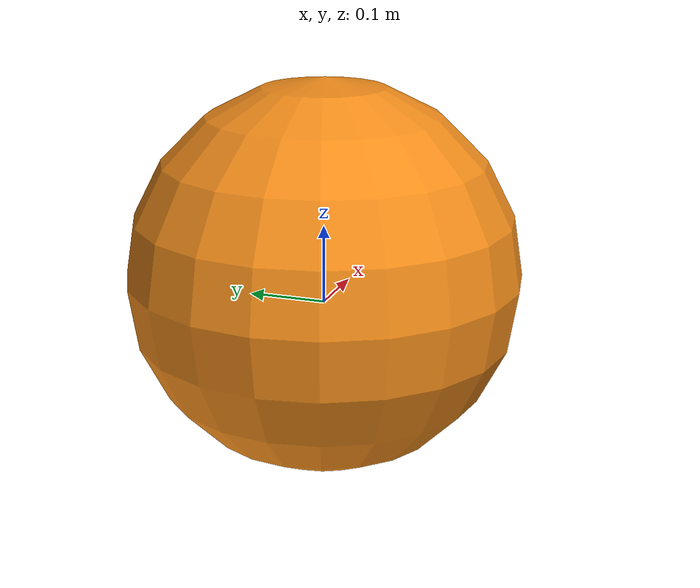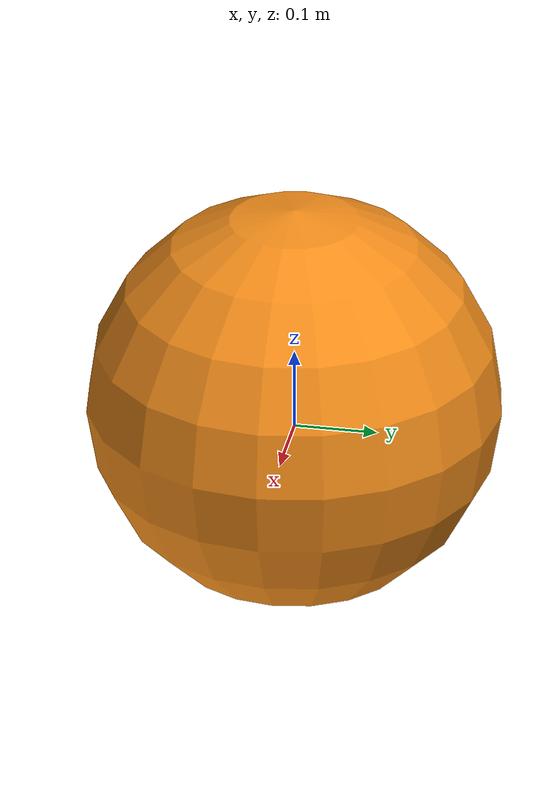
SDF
<?xml version="1.0" ?>

<sdf version="1.5">
  <model name="cricket_ball">
    <link name="link">
      <pose>0 0 0.0375 0 0 0</pose>
      <inertial>
        <mass>0.1467</mass>
        <inertia>
          <ixx>8.251875e-05</ixx>
          <ixy>0</ixy>
          <ixz>0</ixz>
          <iyy>8.251875e-05</iyy>
          <iyz>0</iyz>
          <izz>8.251875e-05</izz>
        </inertia>
      </inertial>

      <collision name="collision">
        <geometry>
          <sphere>
            <radius>0.25</radius>
          </sphere>
        </geometry>
        <surface>
          <contact>
            <!-- Red Pine coefficients for longitudinal axis of the wood
                 according to:
                 http://www.fpl.fs.fed.us/documnts/fplgtr/fplgtr113/ch04.pdf -->
            <poissons_ratio>0.347</poissons_ratio>
            <elastic_modulus>8.8e+09</elastic_modulus>
            <ode>
              <kp>100000</kp>
              <kd>100</kd>
              <max_vel>100.0</max_vel>
              <min_depth>0.001</min_depth>
            </ode>
          </contact>
          <friction>
            <torsional>
              <coefficient>1.0</coefficient>
              <use_patch_radius>0</use_patch_radius>
              <surface_radius>0.01</surface_radius>
            </torsional>
          </friction>
        </surface>
      </collision>

      <visual name="visual">
        <geometry>
          <sphere>
            <radius>0.25</radius>
          </sphere>
        </geometry>
        <material>
          <script>
            <uri>file://media/materials/scripts/gazebo.material</uri>
            <name>Gazebo/Orange</name>
          </script>
        </material>
      </visual>

      <!-- approximate rolling friction -->
      <velocity_decay>
        <linear>0.90</linear>
        <angular>0.005</angular>
      </velocity_decay>
    </link>
  </model>
</sdf>
